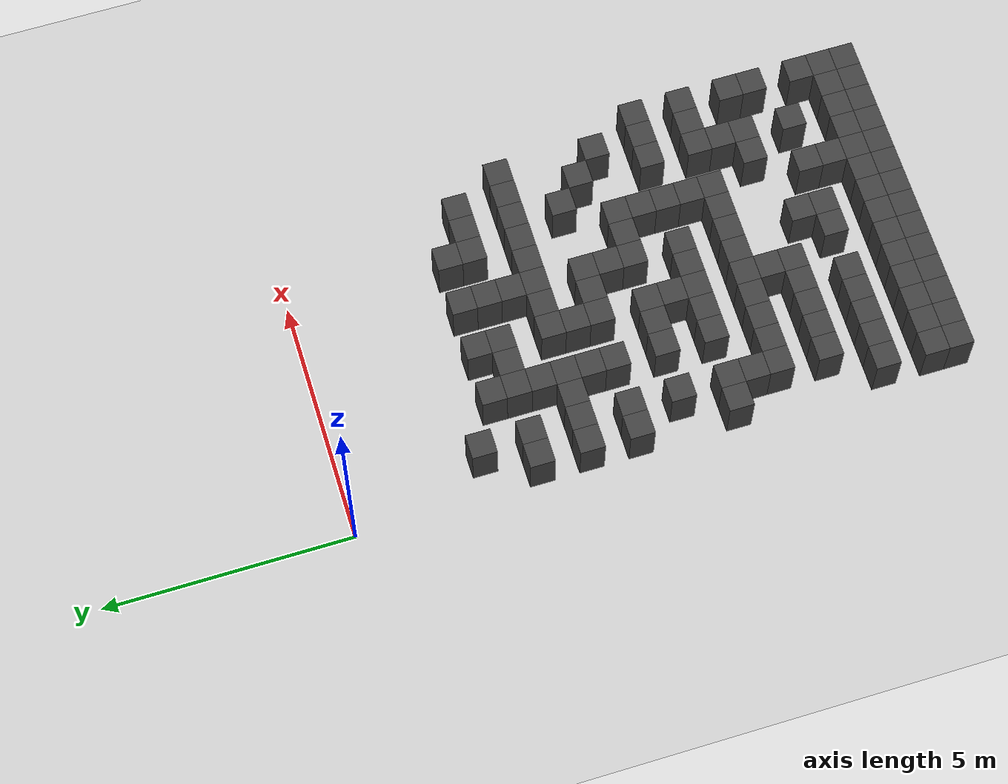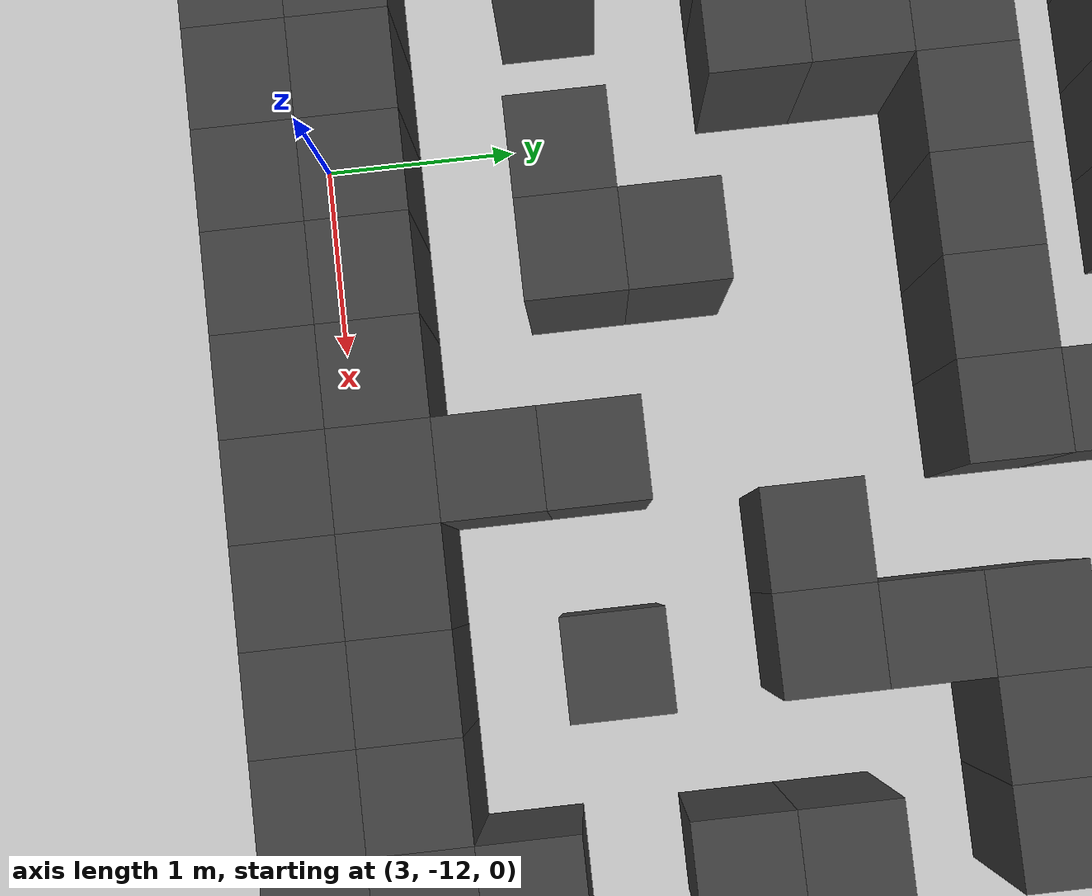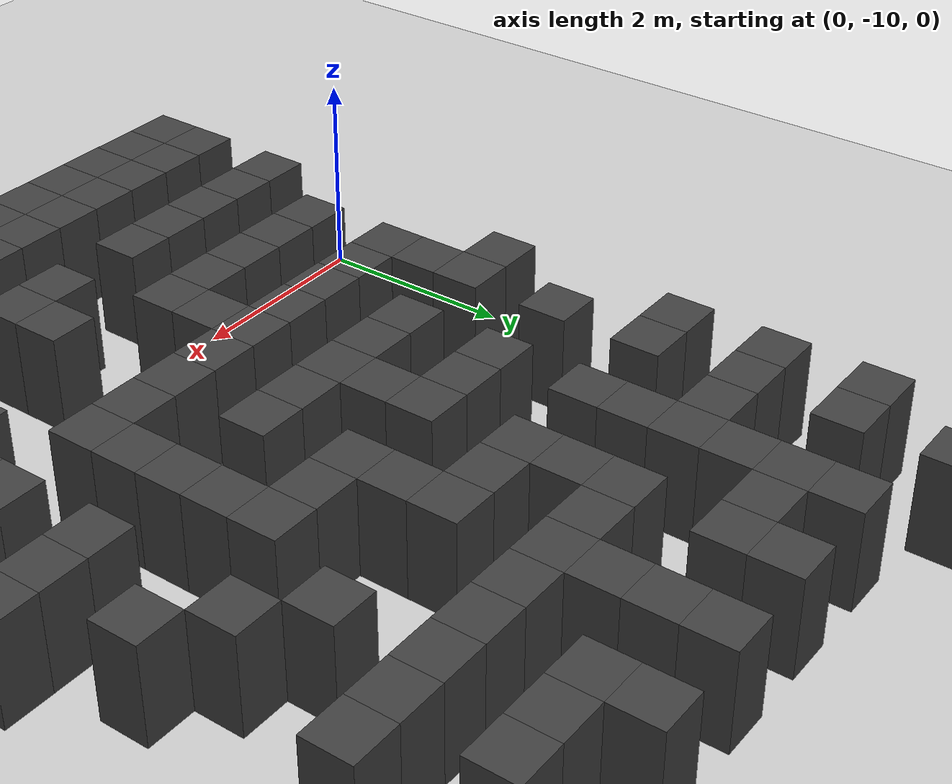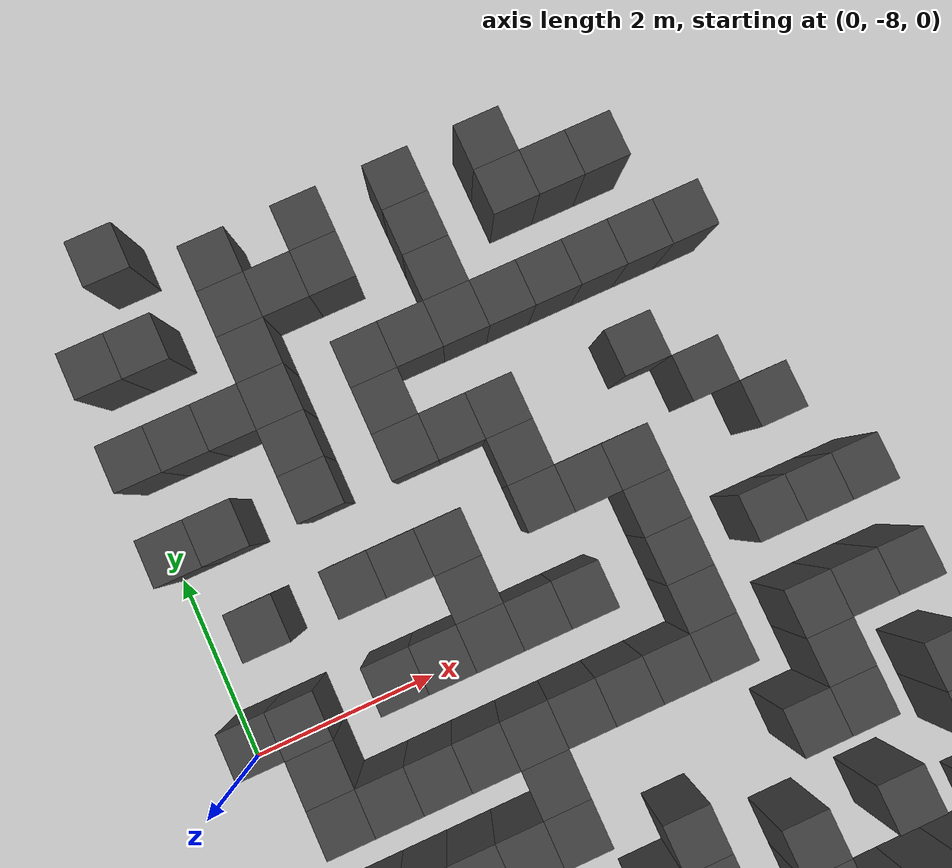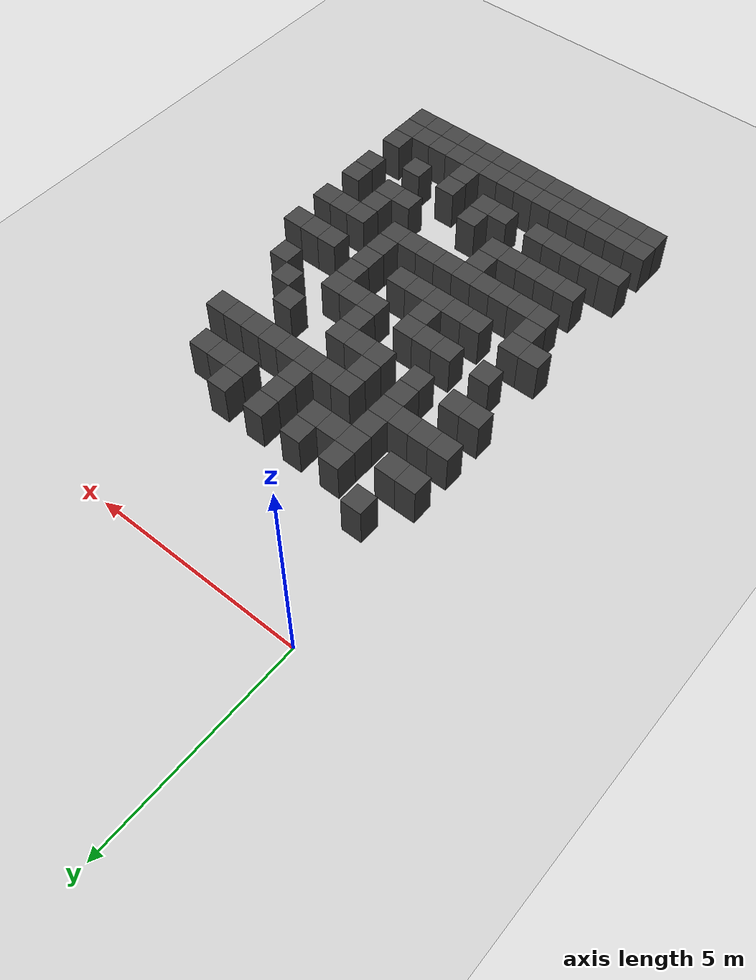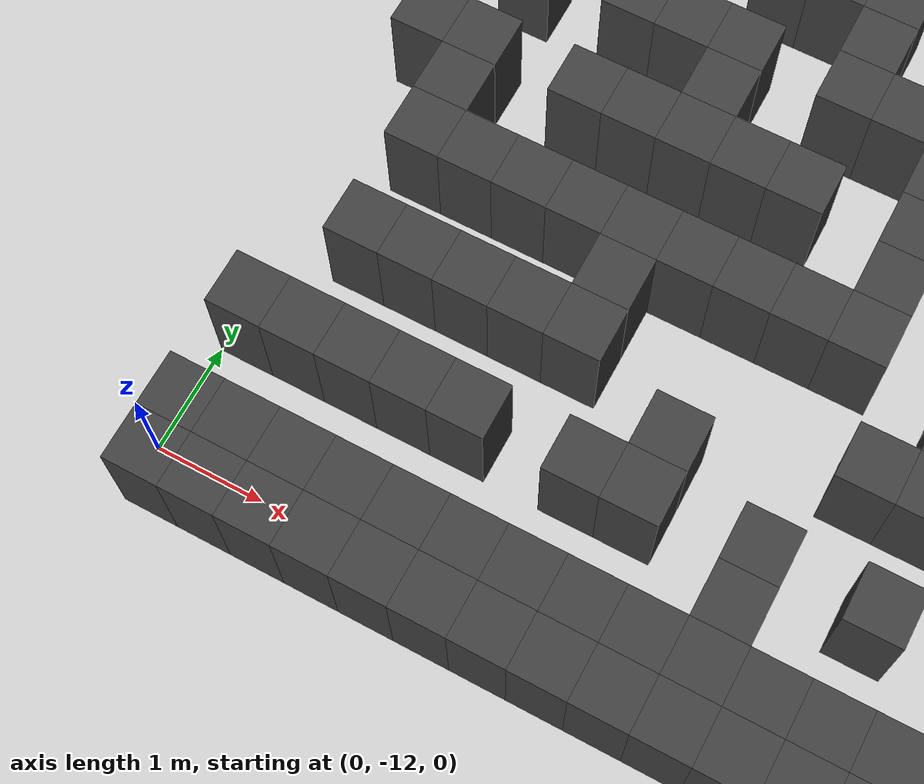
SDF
<sdf version="1.7">
 <world name="map_16734">
  <model name="ground_plane">
   <static>true</static>
   <link name="link">
    <collision name="collision">
     <geometry><plane><normal>0 0 1</normal><size>200 200</size></plane></geometry>
    </collision>
    <visual name="visual">
     <geometry><plane><normal>0 0 1</normal><size>200 200</size></plane></geometry>
     <material><ambient>0.8 0.8 0.8 1</ambient><diffuse>0.8 0.8 0.8 1</diffuse></material>
    </visual>
   </link>
  </model>
  <model name="maze_environment">
   <static>true</static>
   <link name="wall_747">
    <pose>0.750 -2.750 0.500 0 0 0</pose>
    <collision name="col"><geometry><box><size>0.5 0.5 1.0</size></box></geometry></collision>
    <visual name="vis">
     <geometry><box><size>0.5 0.5 1.0</size></box></geometry>
     <material><ambient>0.15 0.15 0.15 1</ambient><diffuse>0.25 0.25 0.25 1</diffuse></material>
    </visual>
   </link>
   <link name="wall_765">
    <pose>1.750 -3.250 0.500 0 0 0</pose>
    <collision name="col"><geometry><box><size>0.5 0.5 1.0</size></box></geometry></collision>
    <visual name="vis">
     <geometry><box><size>0.5 0.5 1.0</size></box></geometry>
     <material><ambient>0.15 0.15 0.15 1</ambient><diffuse>0.25 0.25 0.25 1</diffuse></material>
    </visual>
   </link>
   <link name="wall_766">
    <pose>2.750 -3.250 0.500 0 0 0</pose>
    <collision name="col"><geometry><box><size>0.5 0.5 1.0</size></box></geometry></collision>
    <visual name="vis">
     <geometry><box><size>0.5 0.5 1.0</size></box></geometry>
     <material><ambient>0.15 0.15 0.15 1</ambient><diffuse>0.25 0.25 0.25 1</diffuse></material>
    </visual>
   </link>
   <link name="wall_767">
    <pose>3.750 -3.250 0.500 0 0 0</pose>
    <collision name="col"><geometry><box><size>0.5 0.5 1.0</size></box></geometry></collision>
    <visual name="vis">
     <geometry><box><size>0.5 0.5 1.0</size></box></geometry>
     <material><ambient>0.15 0.15 0.15 1</ambient><diffuse>0.25 0.25 0.25 1</diffuse></material>
    </visual>
   </link>
   <link name="wall_768">
    <pose>4.750 -3.250 0.500 0 0 0</pose>
    <collision name="col"><geometry><box><size>0.5 0.5 1.0</size></box></geometry></collision>
    <visual name="vis">
     <geometry><box><size>0.5 0.5 1.0</size></box></geometry>
     <material><ambient>0.15 0.15 0.15 1</ambient><diffuse>0.25 0.25 0.25 1</diffuse></material>
    </visual>
   </link>
   <link name="wall_794">
    <pose>0.250 -3.750 0.500 0 0 0</pose>
    <collision name="col"><geometry><box><size>0.5 0.5 1.0</size></box></geometry></collision>
    <visual name="vis">
     <geometry><box><size>0.5 0.5 1.0</size></box></geometry>
     <material><ambient>0.15 0.15 0.15 1</ambient><diffuse>0.25 0.25 0.25 1</diffuse></material>
    </visual>
   </link>
   <link name="wall_795">
    <pose>0.750 -3.750 0.500 0 0 0</pose>
    <collision name="col"><geometry><box><size>0.5 0.5 1.0</size></box></geometry></collision>
    <visual name="vis">
     <geometry><box><size>0.5 0.5 1.0</size></box></geometry>
     <material><ambient>0.15 0.15 0.15 1</ambient><diffuse>0.25 0.25 0.25 1</diffuse></material>
    </visual>
   </link>
   <link name="wall_796">
    <pose>1.750 -3.750 0.500 0 0 0</pose>
    <collision name="col"><geometry><box><size>0.5 0.5 1.0</size></box></geometry></collision>
    <visual name="vis">
     <geometry><box><size>0.5 0.5 1.0</size></box></geometry>
     <material><ambient>0.15 0.15 0.15 1</ambient><diffuse>0.25 0.25 0.25 1</diffuse></material>
    </visual>
   </link>
   <link name="wall_797">
    <pose>2.250 -3.750 0.500 0 0 0</pose>
    <collision name="col"><geometry><box><size>0.5 0.5 1.0</size></box></geometry></collision>
    <visual name="vis">
     <geometry><box><size>0.5 0.5 1.0</size></box></geometry>
     <material><ambient>0.15 0.15 0.15 1</ambient><diffuse>0.25 0.25 0.25 1</diffuse></material>
    </visual>
   </link>
   <link name="wall_798">
    <pose>2.750 -3.750 0.500 0 0 0</pose>
    <collision name="col"><geometry><box><size>0.5 0.5 1.0</size></box></geometry></collision>
    <visual name="vis">
     <geometry><box><size>0.5 0.5 1.0</size></box></geometry>
     <material><ambient>0.15 0.15 0.15 1</ambient><diffuse>0.25 0.25 0.25 1</diffuse></material>
    </visual>
   </link>
   <link name="wall_799">
    <pose>3.750 -3.750 0.500 0 0 0</pose>
    <collision name="col"><geometry><box><size>0.5 0.5 1.0</size></box></geometry></collision>
    <visual name="vis">
     <geometry><box><size>0.5 0.5 1.0</size></box></geometry>
     <material><ambient>0.15 0.15 0.15 1</ambient><diffuse>0.25 0.25 0.25 1</diffuse></material>
    </visual>
   </link>
   <link name="wall_800">
    <pose>4.750 -3.750 0.500 0 0 0</pose>
    <collision name="col"><geometry><box><size>0.5 0.5 1.0</size></box></geometry></collision>
    <visual name="vis">
     <geometry><box><size>0.5 0.5 1.0</size></box></geometry>
     <material><ambient>0.15 0.15 0.15 1</ambient><diffuse>0.25 0.25 0.25 1</diffuse></material>
    </visual>
   </link>
   <link name="wall_801">
    <pose>5.250 -3.750 0.500 0 0 0</pose>
    <collision name="col"><geometry><box><size>0.5 0.5 1.0</size></box></geometry></collision>
    <visual name="vis">
     <geometry><box><size>0.5 0.5 1.0</size></box></geometry>
     <material><ambient>0.15 0.15 0.15 1</ambient><diffuse>0.25 0.25 0.25 1</diffuse></material>
    </visual>
   </link>
   <link name="wall_802">
    <pose>5.750 -3.750 0.500 0 0 0</pose>
    <collision name="col"><geometry><box><size>0.5 0.5 1.0</size></box></geometry></collision>
    <visual name="vis">
     <geometry><box><size>0.5 0.5 1.0</size></box></geometry>
     <material><ambient>0.15 0.15 0.15 1</ambient><diffuse>0.25 0.25 0.25 1</diffuse></material>
    </visual>
   </link>
   <link name="wall_817">
    <pose>1.750 -4.250 0.500 0 0 0</pose>
    <collision name="col"><geometry><box><size>0.5 0.5 1.0</size></box></geometry></collision>
    <visual name="vis">
     <geometry><box><size>0.5 0.5 1.0</size></box></geometry>
     <material><ambient>0.15 0.15 0.15 1</ambient><diffuse>0.25 0.25 0.25 1</diffuse></material>
    </visual>
   </link>
   <link name="wall_818">
    <pose>3.750 -4.250 0.500 0 0 0</pose>
    <collision name="col"><geometry><box><size>0.5 0.5 1.0</size></box></geometry></collision>
    <visual name="vis">
     <geometry><box><size>0.5 0.5 1.0</size></box></geometry>
     <material><ambient>0.15 0.15 0.15 1</ambient><diffuse>0.25 0.25 0.25 1</diffuse></material>
    </visual>
   </link>
   <link name="wall_840">
    <pose>0.250 -4.750 0.500 0 0 0</pose>
    <collision name="col"><geometry><box><size>0.5 0.5 1.0</size></box></geometry></collision>
    <visual name="vis">
     <geometry><box><size>0.5 0.5 1.0</size></box></geometry>
     <material><ambient>0.15 0.15 0.15 1</ambient><diffuse>0.25 0.25 0.25 1</diffuse></material>
    </visual>
   </link>
   <link name="wall_841">
    <pose>0.750 -4.750 0.500 0 0 0</pose>
    <collision name="col"><geometry><box><size>0.5 0.5 1.0</size></box></geometry></collision>
    <visual name="vis">
     <geometry><box><size>0.5 0.5 1.0</size></box></geometry>
     <material><ambient>0.15 0.15 0.15 1</ambient><diffuse>0.25 0.25 0.25 1</diffuse></material>
    </visual>
   </link>
   <link name="wall_842">
    <pose>1.250 -4.750 0.500 0 0 0</pose>
    <collision name="col"><geometry><box><size>0.5 0.5 1.0</size></box></geometry></collision>
    <visual name="vis">
     <geometry><box><size>0.5 0.5 1.0</size></box></geometry>
     <material><ambient>0.15 0.15 0.15 1</ambient><diffuse>0.25 0.25 0.25 1</diffuse></material>
    </visual>
   </link>
   <link name="wall_843">
    <pose>1.750 -4.750 0.500 0 0 0</pose>
    <collision name="col"><geometry><box><size>0.5 0.5 1.0</size></box></geometry></collision>
    <visual name="vis">
     <geometry><box><size>0.5 0.5 1.0</size></box></geometry>
     <material><ambient>0.15 0.15 0.15 1</ambient><diffuse>0.25 0.25 0.25 1</diffuse></material>
    </visual>
   </link>
   <link name="wall_844">
    <pose>2.750 -4.750 0.500 0 0 0</pose>
    <collision name="col"><geometry><box><size>0.5 0.5 1.0</size></box></geometry></collision>
    <visual name="vis">
     <geometry><box><size>0.5 0.5 1.0</size></box></geometry>
     <material><ambient>0.15 0.15 0.15 1</ambient><diffuse>0.25 0.25 0.25 1</diffuse></material>
    </visual>
   </link>
   <link name="wall_845">
    <pose>3.250 -4.750 0.500 0 0 0</pose>
    <collision name="col"><geometry><box><size>0.5 0.5 1.0</size></box></geometry></collision>
    <visual name="vis">
     <geometry><box><size>0.5 0.5 1.0</size></box></geometry>
     <material><ambient>0.15 0.15 0.15 1</ambient><diffuse>0.25 0.25 0.25 1</diffuse></material>
    </visual>
   </link>
   <link name="wall_846">
    <pose>3.750 -4.750 0.500 0 0 0</pose>
    <collision name="col"><geometry><box><size>0.5 0.5 1.0</size></box></geometry></collision>
    <visual name="vis">
     <geometry><box><size>0.5 0.5 1.0</size></box></geometry>
     <material><ambient>0.15 0.15 0.15 1</ambient><diffuse>0.25 0.25 0.25 1</diffuse></material>
    </visual>
   </link>
   <link name="wall_847">
    <pose>4.250 -4.750 0.500 0 0 0</pose>
    <collision name="col"><geometry><box><size>0.5 0.5 1.0</size></box></geometry></collision>
    <visual name="vis">
     <geometry><box><size>0.5 0.5 1.0</size></box></geometry>
     <material><ambient>0.15 0.15 0.15 1</ambient><diffuse>0.25 0.25 0.25 1</diffuse></material>
    </visual>
   </link>
   <link name="wall_848">
    <pose>4.750 -4.750 0.500 0 0 0</pose>
    <collision name="col"><geometry><box><size>0.5 0.5 1.0</size></box></geometry></collision>
    <visual name="vis">
     <geometry><box><size>0.5 0.5 1.0</size></box></geometry>
     <material><ambient>0.15 0.15 0.15 1</ambient><diffuse>0.25 0.25 0.25 1</diffuse></material>
    </visual>
   </link>
   <link name="wall_849">
    <pose>5.250 -4.750 0.500 0 0 0</pose>
    <collision name="col"><geometry><box><size>0.5 0.5 1.0</size></box></geometry></collision>
    <visual name="vis">
     <geometry><box><size>0.5 0.5 1.0</size></box></geometry>
     <material><ambient>0.15 0.15 0.15 1</ambient><diffuse>0.25 0.25 0.25 1</diffuse></material>
    </visual>
   </link>
   <link name="wall_850">
    <pose>5.750 -4.750 0.500 0 0 0</pose>
    <collision name="col"><geometry><box><size>0.5 0.5 1.0</size></box></geometry></collision>
    <visual name="vis">
     <geometry><box><size>0.5 0.5 1.0</size></box></geometry>
     <material><ambient>0.15 0.15 0.15 1</ambient><diffuse>0.25 0.25 0.25 1</diffuse></material>
    </visual>
   </link>
   <link name="wall_851">
    <pose>6.250 -4.750 0.500 0 0 0</pose>
    <collision name="col"><geometry><box><size>0.5 0.5 1.0</size></box></geometry></collision>
    <visual name="vis">
     <geometry><box><size>0.5 0.5 1.0</size></box></geometry>
     <material><ambient>0.15 0.15 0.15 1</ambient><diffuse>0.25 0.25 0.25 1</diffuse></material>
    </visual>
   </link>
   <link name="wall_868">
    <pose>1.750 -5.250 0.500 0 0 0</pose>
    <collision name="col"><geometry><box><size>0.5 0.5 1.0</size></box></geometry></collision>
    <visual name="vis">
     <geometry><box><size>0.5 0.5 1.0</size></box></geometry>
     <material><ambient>0.15 0.15 0.15 1</ambient><diffuse>0.25 0.25 0.25 1</diffuse></material>
    </visual>
   </link>
   <link name="wall_869">
    <pose>2.750 -5.250 0.500 0 0 0</pose>
    <collision name="col"><geometry><box><size>0.5 0.5 1.0</size></box></geometry></collision>
    <visual name="vis">
     <geometry><box><size>0.5 0.5 1.0</size></box></geometry>
     <material><ambient>0.15 0.15 0.15 1</ambient><diffuse>0.25 0.25 0.25 1</diffuse></material>
    </visual>
   </link>
   <link name="wall_893">
    <pose>0.250 -5.750 0.500 0 0 0</pose>
    <collision name="col"><geometry><box><size>0.5 0.5 1.0</size></box></geometry></collision>
    <visual name="vis">
     <geometry><box><size>0.5 0.5 1.0</size></box></geometry>
     <material><ambient>0.15 0.15 0.15 1</ambient><diffuse>0.25 0.25 0.25 1</diffuse></material>
    </visual>
   </link>
   <link name="wall_894">
    <pose>0.750 -5.750 0.500 0 0 0</pose>
    <collision name="col"><geometry><box><size>0.5 0.5 1.0</size></box></geometry></collision>
    <visual name="vis">
     <geometry><box><size>0.5 0.5 1.0</size></box></geometry>
     <material><ambient>0.15 0.15 0.15 1</ambient><diffuse>0.25 0.25 0.25 1</diffuse></material>
    </visual>
   </link>
   <link name="wall_895">
    <pose>1.750 -5.750 0.500 0 0 0</pose>
    <collision name="col"><geometry><box><size>0.5 0.5 1.0</size></box></geometry></collision>
    <visual name="vis">
     <geometry><box><size>0.5 0.5 1.0</size></box></geometry>
     <material><ambient>0.15 0.15 0.15 1</ambient><diffuse>0.25 0.25 0.25 1</diffuse></material>
    </visual>
   </link>
   <link name="wall_896">
    <pose>2.750 -5.750 0.500 0 0 0</pose>
    <collision name="col"><geometry><box><size>0.5 0.5 1.0</size></box></geometry></collision>
    <visual name="vis">
     <geometry><box><size>0.5 0.5 1.0</size></box></geometry>
     <material><ambient>0.15 0.15 0.15 1</ambient><diffuse>0.25 0.25 0.25 1</diffuse></material>
    </visual>
   </link>
   <link name="wall_897">
    <pose>3.250 -5.750 0.500 0 0 0</pose>
    <collision name="col"><geometry><box><size>0.5 0.5 1.0</size></box></geometry></collision>
    <visual name="vis">
     <geometry><box><size>0.5 0.5 1.0</size></box></geometry>
     <material><ambient>0.15 0.15 0.15 1</ambient><diffuse>0.25 0.25 0.25 1</diffuse></material>
    </visual>
   </link>
   <link name="wall_898">
    <pose>3.750 -5.750 0.500 0 0 0</pose>
    <collision name="col"><geometry><box><size>0.5 0.5 1.0</size></box></geometry></collision>
    <visual name="vis">
     <geometry><box><size>0.5 0.5 1.0</size></box></geometry>
     <material><ambient>0.15 0.15 0.15 1</ambient><diffuse>0.25 0.25 0.25 1</diffuse></material>
    </visual>
   </link>
   <link name="wall_899">
    <pose>5.250 -5.750 0.500 0 0 0</pose>
    <collision name="col"><geometry><box><size>0.5 0.5 1.0</size></box></geometry></collision>
    <visual name="vis">
     <geometry><box><size>0.5 0.5 1.0</size></box></geometry>
     <material><ambient>0.15 0.15 0.15 1</ambient><diffuse>0.25 0.25 0.25 1</diffuse></material>
    </visual>
   </link>
   <link name="wall_915">
    <pose>3.750 -6.250 0.500 0 0 0</pose>
    <collision name="col"><geometry><box><size>0.5 0.5 1.0</size></box></geometry></collision>
    <visual name="vis">
     <geometry><box><size>0.5 0.5 1.0</size></box></geometry>
     <material><ambient>0.15 0.15 0.15 1</ambient><diffuse>0.25 0.25 0.25 1</diffuse></material>
    </visual>
   </link>
   <link name="wall_916">
    <pose>5.750 -6.250 0.500 0 0 0</pose>
    <collision name="col"><geometry><box><size>0.5 0.5 1.0</size></box></geometry></collision>
    <visual name="vis">
     <geometry><box><size>0.5 0.5 1.0</size></box></geometry>
     <material><ambient>0.15 0.15 0.15 1</ambient><diffuse>0.25 0.25 0.25 1</diffuse></material>
    </visual>
   </link>
   <link name="wall_939">
    <pose>0.750 -6.750 0.500 0 0 0</pose>
    <collision name="col"><geometry><box><size>0.5 0.5 1.0</size></box></geometry></collision>
    <visual name="vis">
     <geometry><box><size>0.5 0.5 1.0</size></box></geometry>
     <material><ambient>0.15 0.15 0.15 1</ambient><diffuse>0.25 0.25 0.25 1</diffuse></material>
    </visual>
   </link>
   <link name="wall_940">
    <pose>1.750 -6.750 0.500 0 0 0</pose>
    <collision name="col"><geometry><box><size>0.5 0.5 1.0</size></box></geometry></collision>
    <visual name="vis">
     <geometry><box><size>0.5 0.5 1.0</size></box></geometry>
     <material><ambient>0.15 0.15 0.15 1</ambient><diffuse>0.25 0.25 0.25 1</diffuse></material>
    </visual>
   </link>
   <link name="wall_941">
    <pose>2.250 -6.750 0.500 0 0 0</pose>
    <collision name="col"><geometry><box><size>0.5 0.5 1.0</size></box></geometry></collision>
    <visual name="vis">
     <geometry><box><size>0.5 0.5 1.0</size></box></geometry>
     <material><ambient>0.15 0.15 0.15 1</ambient><diffuse>0.25 0.25 0.25 1</diffuse></material>
    </visual>
   </link>
   <link name="wall_942">
    <pose>2.750 -6.750 0.500 0 0 0</pose>
    <collision name="col"><geometry><box><size>0.5 0.5 1.0</size></box></geometry></collision>
    <visual name="vis">
     <geometry><box><size>0.5 0.5 1.0</size></box></geometry>
     <material><ambient>0.15 0.15 0.15 1</ambient><diffuse>0.25 0.25 0.25 1</diffuse></material>
    </visual>
   </link>
   <link name="wall_943">
    <pose>3.750 -6.750 0.500 0 0 0</pose>
    <collision name="col"><geometry><box><size>0.5 0.5 1.0</size></box></geometry></collision>
    <visual name="vis">
     <geometry><box><size>0.5 0.5 1.0</size></box></geometry>
     <material><ambient>0.15 0.15 0.15 1</ambient><diffuse>0.25 0.25 0.25 1</diffuse></material>
    </visual>
   </link>
   <link name="wall_944">
    <pose>4.250 -6.750 0.500 0 0 0</pose>
    <collision name="col"><geometry><box><size>0.5 0.5 1.0</size></box></geometry></collision>
    <visual name="vis">
     <geometry><box><size>0.5 0.5 1.0</size></box></geometry>
     <material><ambient>0.15 0.15 0.15 1</ambient><diffuse>0.25 0.25 0.25 1</diffuse></material>
    </visual>
   </link>
   <link name="wall_945">
    <pose>4.750 -6.750 0.500 0 0 0</pose>
    <collision name="col"><geometry><box><size>0.5 0.5 1.0</size></box></geometry></collision>
    <visual name="vis">
     <geometry><box><size>0.5 0.5 1.0</size></box></geometry>
     <material><ambient>0.15 0.15 0.15 1</ambient><diffuse>0.25 0.25 0.25 1</diffuse></material>
    </visual>
   </link>
   <link name="wall_946">
    <pose>6.250 -6.750 0.500 0 0 0</pose>
    <collision name="col"><geometry><box><size>0.5 0.5 1.0</size></box></geometry></collision>
    <visual name="vis">
     <geometry><box><size>0.5 0.5 1.0</size></box></geometry>
     <material><ambient>0.15 0.15 0.15 1</ambient><diffuse>0.25 0.25 0.25 1</diffuse></material>
    </visual>
   </link>
   <link name="wall_963">
    <pose>2.750 -7.250 0.500 0 0 0</pose>
    <collision name="col"><geometry><box><size>0.5 0.5 1.0</size></box></geometry></collision>
    <visual name="vis">
     <geometry><box><size>0.5 0.5 1.0</size></box></geometry>
     <material><ambient>0.15 0.15 0.15 1</ambient><diffuse>0.25 0.25 0.25 1</diffuse></material>
    </visual>
   </link>
   <link name="wall_964">
    <pose>4.750 -7.250 0.500 0 0 0</pose>
    <collision name="col"><geometry><box><size>0.5 0.5 1.0</size></box></geometry></collision>
    <visual name="vis">
     <geometry><box><size>0.5 0.5 1.0</size></box></geometry>
     <material><ambient>0.15 0.15 0.15 1</ambient><diffuse>0.25 0.25 0.25 1</diffuse></material>
    </visual>
   </link>
   <link name="wall_984">
    <pose>0.250 -7.750 0.500 0 0 0</pose>
    <collision name="col"><geometry><box><size>0.5 0.5 1.0</size></box></geometry></collision>
    <visual name="vis">
     <geometry><box><size>0.5 0.5 1.0</size></box></geometry>
     <material><ambient>0.15 0.15 0.15 1</ambient><diffuse>0.25 0.25 0.25 1</diffuse></material>
    </visual>
   </link>
   <link name="wall_985">
    <pose>0.750 -7.750 0.500 0 0 0</pose>
    <collision name="col"><geometry><box><size>0.5 0.5 1.0</size></box></geometry></collision>
    <visual name="vis">
     <geometry><box><size>0.5 0.5 1.0</size></box></geometry>
     <material><ambient>0.15 0.15 0.15 1</ambient><diffuse>0.25 0.25 0.25 1</diffuse></material>
    </visual>
   </link>
   <link name="wall_986">
    <pose>1.750 -7.750 0.500 0 0 0</pose>
    <collision name="col"><geometry><box><size>0.5 0.5 1.0</size></box></geometry></collision>
    <visual name="vis">
     <geometry><box><size>0.5 0.5 1.0</size></box></geometry>
     <material><ambient>0.15 0.15 0.15 1</ambient><diffuse>0.25 0.25 0.25 1</diffuse></material>
    </visual>
   </link>
   <link name="wall_987">
    <pose>2.250 -7.750 0.500 0 0 0</pose>
    <collision name="col"><geometry><box><size>0.5 0.5 1.0</size></box></geometry></collision>
    <visual name="vis">
     <geometry><box><size>0.5 0.5 1.0</size></box></geometry>
     <material><ambient>0.15 0.15 0.15 1</ambient><diffuse>0.25 0.25 0.25 1</diffuse></material>
    </visual>
   </link>
   <link name="wall_988">
    <pose>2.750 -7.750 0.500 0 0 0</pose>
    <collision name="col"><geometry><box><size>0.5 0.5 1.0</size></box></geometry></collision>
    <visual name="vis">
     <geometry><box><size>0.5 0.5 1.0</size></box></geometry>
     <material><ambient>0.15 0.15 0.15 1</ambient><diffuse>0.25 0.25 0.25 1</diffuse></material>
    </visual>
   </link>
   <link name="wall_989">
    <pose>3.250 -7.750 0.500 0 0 0</pose>
    <collision name="col"><geometry><box><size>0.5 0.5 1.0</size></box></geometry></collision>
    <visual name="vis">
     <geometry><box><size>0.5 0.5 1.0</size></box></geometry>
     <material><ambient>0.15 0.15 0.15 1</ambient><diffuse>0.25 0.25 0.25 1</diffuse></material>
    </visual>
   </link>
   <link name="wall_990">
    <pose>3.750 -7.750 0.500 0 0 0</pose>
    <collision name="col"><geometry><box><size>0.5 0.5 1.0</size></box></geometry></collision>
    <visual name="vis">
     <geometry><box><size>0.5 0.5 1.0</size></box></geometry>
     <material><ambient>0.15 0.15 0.15 1</ambient><diffuse>0.25 0.25 0.25 1</diffuse></material>
    </visual>
   </link>
   <link name="wall_991">
    <pose>4.750 -7.750 0.500 0 0 0</pose>
    <collision name="col"><geometry><box><size>0.5 0.5 1.0</size></box></geometry></collision>
    <visual name="vis">
     <geometry><box><size>0.5 0.5 1.0</size></box></geometry>
     <material><ambient>0.15 0.15 0.15 1</ambient><diffuse>0.25 0.25 0.25 1</diffuse></material>
    </visual>
   </link>
   <link name="wall_992">
    <pose>5.750 -7.750 0.500 0 0 0</pose>
    <collision name="col"><geometry><box><size>0.5 0.5 1.0</size></box></geometry></collision>
    <visual name="vis">
     <geometry><box><size>0.5 0.5 1.0</size></box></geometry>
     <material><ambient>0.15 0.15 0.15 1</ambient><diffuse>0.25 0.25 0.25 1</diffuse></material>
    </visual>
   </link>
   <link name="wall_993">
    <pose>6.250 -7.750 0.500 0 0 0</pose>
    <collision name="col"><geometry><box><size>0.5 0.5 1.0</size></box></geometry></collision>
    <visual name="vis">
     <geometry><box><size>0.5 0.5 1.0</size></box></geometry>
     <material><ambient>0.15 0.15 0.15 1</ambient><diffuse>0.25 0.25 0.25 1</diffuse></material>
    </visual>
   </link>
   <link name="wall_994">
    <pose>6.750 -7.750 0.500 0 0 0</pose>
    <collision name="col"><geometry><box><size>0.5 0.5 1.0</size></box></geometry></collision>
    <visual name="vis">
     <geometry><box><size>0.5 0.5 1.0</size></box></geometry>
     <material><ambient>0.15 0.15 0.15 1</ambient><diffuse>0.25 0.25 0.25 1</diffuse></material>
    </visual>
   </link>
   <link name="wall_1009">
    <pose>0.750 -8.250 0.500 0 0 0</pose>
    <collision name="col"><geometry><box><size>0.5 0.5 1.0</size></box></geometry></collision>
    <visual name="vis">
     <geometry><box><size>0.5 0.5 1.0</size></box></geometry>
     <material><ambient>0.15 0.15 0.15 1</ambient><diffuse>0.25 0.25 0.25 1</diffuse></material>
    </visual>
   </link>
   <link name="wall_1010">
    <pose>4.750 -8.250 0.500 0 0 0</pose>
    <collision name="col"><geometry><box><size>0.5 0.5 1.0</size></box></geometry></collision>
    <visual name="vis">
     <geometry><box><size>0.5 0.5 1.0</size></box></geometry>
     <material><ambient>0.15 0.15 0.15 1</ambient><diffuse>0.25 0.25 0.25 1</diffuse></material>
    </visual>
   </link>
   <link name="wall_1031">
    <pose>0.750 -8.750 0.500 0 0 0</pose>
    <collision name="col"><geometry><box><size>0.5 0.5 1.0</size></box></geometry></collision>
    <visual name="vis">
     <geometry><box><size>0.5 0.5 1.0</size></box></geometry>
     <material><ambient>0.15 0.15 0.15 1</ambient><diffuse>0.25 0.25 0.25 1</diffuse></material>
    </visual>
   </link>
   <link name="wall_1032">
    <pose>1.250 -8.750 0.500 0 0 0</pose>
    <collision name="col"><geometry><box><size>0.5 0.5 1.0</size></box></geometry></collision>
    <visual name="vis">
     <geometry><box><size>0.5 0.5 1.0</size></box></geometry>
     <material><ambient>0.15 0.15 0.15 1</ambient><diffuse>0.25 0.25 0.25 1</diffuse></material>
    </visual>
   </link>
   <link name="wall_1033">
    <pose>1.750 -8.750 0.500 0 0 0</pose>
    <collision name="col"><geometry><box><size>0.5 0.5 1.0</size></box></geometry></collision>
    <visual name="vis">
     <geometry><box><size>0.5 0.5 1.0</size></box></geometry>
     <material><ambient>0.15 0.15 0.15 1</ambient><diffuse>0.25 0.25 0.25 1</diffuse></material>
    </visual>
   </link>
   <link name="wall_1034">
    <pose>2.250 -8.750 0.500 0 0 0</pose>
    <collision name="col"><geometry><box><size>0.5 0.5 1.0</size></box></geometry></collision>
    <visual name="vis">
     <geometry><box><size>0.5 0.5 1.0</size></box></geometry>
     <material><ambient>0.15 0.15 0.15 1</ambient><diffuse>0.25 0.25 0.25 1</diffuse></material>
    </visual>
   </link>
   <link name="wall_1035">
    <pose>2.750 -8.750 0.500 0 0 0</pose>
    <collision name="col"><geometry><box><size>0.5 0.5 1.0</size></box></geometry></collision>
    <visual name="vis">
     <geometry><box><size>0.5 0.5 1.0</size></box></geometry>
     <material><ambient>0.15 0.15 0.15 1</ambient><diffuse>0.25 0.25 0.25 1</diffuse></material>
    </visual>
   </link>
   <link name="wall_1036">
    <pose>3.250 -8.750 0.500 0 0 0</pose>
    <collision name="col"><geometry><box><size>0.5 0.5 1.0</size></box></geometry></collision>
    <visual name="vis">
     <geometry><box><size>0.5 0.5 1.0</size></box></geometry>
     <material><ambient>0.15 0.15 0.15 1</ambient><diffuse>0.25 0.25 0.25 1</diffuse></material>
    </visual>
   </link>
   <link name="wall_1037">
    <pose>3.750 -8.750 0.500 0 0 0</pose>
    <collision name="col"><geometry><box><size>0.5 0.5 1.0</size></box></geometry></collision>
    <visual name="vis">
     <geometry><box><size>0.5 0.5 1.0</size></box></geometry>
     <material><ambient>0.15 0.15 0.15 1</ambient><diffuse>0.25 0.25 0.25 1</diffuse></material>
    </visual>
   </link>
   <link name="wall_1038">
    <pose>4.250 -8.750 0.500 0 0 0</pose>
    <collision name="col"><geometry><box><size>0.5 0.5 1.0</size></box></geometry></collision>
    <visual name="vis">
     <geometry><box><size>0.5 0.5 1.0</size></box></geometry>
     <material><ambient>0.15 0.15 0.15 1</ambient><diffuse>0.25 0.25 0.25 1</diffuse></material>
    </visual>
   </link>
   <link name="wall_1039">
    <pose>4.750 -8.750 0.500 0 0 0</pose>
    <collision name="col"><geometry><box><size>0.5 0.5 1.0</size></box></geometry></collision>
    <visual name="vis">
     <geometry><box><size>0.5 0.5 1.0</size></box></geometry>
     <material><ambient>0.15 0.15 0.15 1</ambient><diffuse>0.25 0.25 0.25 1</diffuse></material>
    </visual>
   </link>
   <link name="wall_1040">
    <pose>5.750 -8.750 0.500 0 0 0</pose>
    <collision name="col"><geometry><box><size>0.5 0.5 1.0</size></box></geometry></collision>
    <visual name="vis">
     <geometry><box><size>0.5 0.5 1.0</size></box></geometry>
     <material><ambient>0.15 0.15 0.15 1</ambient><diffuse>0.25 0.25 0.25 1</diffuse></material>
    </visual>
   </link>
   <link name="wall_1041">
    <pose>6.250 -8.750 0.500 0 0 0</pose>
    <collision name="col"><geometry><box><size>0.5 0.5 1.0</size></box></geometry></collision>
    <visual name="vis">
     <geometry><box><size>0.5 0.5 1.0</size></box></geometry>
     <material><ambient>0.15 0.15 0.15 1</ambient><diffuse>0.25 0.25 0.25 1</diffuse></material>
    </visual>
   </link>
   <link name="wall_1042">
    <pose>6.750 -8.750 0.500 0 0 0</pose>
    <collision name="col"><geometry><box><size>0.5 0.5 1.0</size></box></geometry></collision>
    <visual name="vis">
     <geometry><box><size>0.5 0.5 1.0</size></box></geometry>
     <material><ambient>0.15 0.15 0.15 1</ambient><diffuse>0.25 0.25 0.25 1</diffuse></material>
    </visual>
   </link>
   <link name="wall_1053">
    <pose>2.750 -9.250 0.500 0 0 0</pose>
    <collision name="col"><geometry><box><size>0.5 0.5 1.0</size></box></geometry></collision>
    <visual name="vis">
     <geometry><box><size>0.5 0.5 1.0</size></box></geometry>
     <material><ambient>0.15 0.15 0.15 1</ambient><diffuse>0.25 0.25 0.25 1</diffuse></material>
    </visual>
   </link>
   <link name="wall_1054">
    <pose>5.750 -9.250 0.500 0 0 0</pose>
    <collision name="col"><geometry><box><size>0.5 0.5 1.0</size></box></geometry></collision>
    <visual name="vis">
     <geometry><box><size>0.5 0.5 1.0</size></box></geometry>
     <material><ambient>0.15 0.15 0.15 1</ambient><diffuse>0.25 0.25 0.25 1</diffuse></material>
    </visual>
   </link>
   <link name="wall_1083">
    <pose>0.750 -9.750 0.500 0 0 0</pose>
    <collision name="col"><geometry><box><size>0.5 0.5 1.0</size></box></geometry></collision>
    <visual name="vis">
     <geometry><box><size>0.5 0.5 1.0</size></box></geometry>
     <material><ambient>0.15 0.15 0.15 1</ambient><diffuse>0.25 0.25 0.25 1</diffuse></material>
    </visual>
   </link>
   <link name="wall_1084">
    <pose>1.250 -9.750 0.500 0 0 0</pose>
    <collision name="col"><geometry><box><size>0.5 0.5 1.0</size></box></geometry></collision>
    <visual name="vis">
     <geometry><box><size>0.5 0.5 1.0</size></box></geometry>
     <material><ambient>0.15 0.15 0.15 1</ambient><diffuse>0.25 0.25 0.25 1</diffuse></material>
    </visual>
   </link>
   <link name="wall_1085">
    <pose>1.750 -9.750 0.500 0 0 0</pose>
    <collision name="col"><geometry><box><size>0.5 0.5 1.0</size></box></geometry></collision>
    <visual name="vis">
     <geometry><box><size>0.5 0.5 1.0</size></box></geometry>
     <material><ambient>0.15 0.15 0.15 1</ambient><diffuse>0.25 0.25 0.25 1</diffuse></material>
    </visual>
   </link>
   <link name="wall_1086">
    <pose>2.250 -9.750 0.500 0 0 0</pose>
    <collision name="col"><geometry><box><size>0.5 0.5 1.0</size></box></geometry></collision>
    <visual name="vis">
     <geometry><box><size>0.5 0.5 1.0</size></box></geometry>
     <material><ambient>0.15 0.15 0.15 1</ambient><diffuse>0.25 0.25 0.25 1</diffuse></material>
    </visual>
   </link>
   <link name="wall_1087">
    <pose>2.750 -9.750 0.500 0 0 0</pose>
    <collision name="col"><geometry><box><size>0.5 0.5 1.0</size></box></geometry></collision>
    <visual name="vis">
     <geometry><box><size>0.5 0.5 1.0</size></box></geometry>
     <material><ambient>0.15 0.15 0.15 1</ambient><diffuse>0.25 0.25 0.25 1</diffuse></material>
    </visual>
   </link>
   <link name="wall_1088">
    <pose>5.250 -9.750 0.500 0 0 0</pose>
    <collision name="col"><geometry><box><size>0.5 0.5 1.0</size></box></geometry></collision>
    <visual name="vis">
     <geometry><box><size>0.5 0.5 1.0</size></box></geometry>
     <material><ambient>0.15 0.15 0.15 1</ambient><diffuse>0.25 0.25 0.25 1</diffuse></material>
    </visual>
   </link>
   <link name="wall_1089">
    <pose>5.750 -9.750 0.500 0 0 0</pose>
    <collision name="col"><geometry><box><size>0.5 0.5 1.0</size></box></geometry></collision>
    <visual name="vis">
     <geometry><box><size>0.5 0.5 1.0</size></box></geometry>
     <material><ambient>0.15 0.15 0.15 1</ambient><diffuse>0.25 0.25 0.25 1</diffuse></material>
    </visual>
   </link>
   <link name="wall_1090">
    <pose>6.750 -9.750 0.500 0 0 0</pose>
    <collision name="col"><geometry><box><size>0.5 0.5 1.0</size></box></geometry></collision>
    <visual name="vis">
     <geometry><box><size>0.5 0.5 1.0</size></box></geometry>
     <material><ambient>0.15 0.15 0.15 1</ambient><diffuse>0.25 0.25 0.25 1</diffuse></material>
    </visual>
   </link>
   <link name="wall_1103">
    <pose>3.750 -10.250 0.500 0 0 0</pose>
    <collision name="col"><geometry><box><size>0.5 0.5 1.0</size></box></geometry></collision>
    <visual name="vis">
     <geometry><box><size>0.5 0.5 1.0</size></box></geometry>
     <material><ambient>0.15 0.15 0.15 1</ambient><diffuse>0.25 0.25 0.25 1</diffuse></material>
    </visual>
   </link>
   <link name="wall_1104">
    <pose>6.750 -10.250 0.500 0 0 0</pose>
    <collision name="col"><geometry><box><size>0.5 0.5 1.0</size></box></geometry></collision>
    <visual name="vis">
     <geometry><box><size>0.5 0.5 1.0</size></box></geometry>
     <material><ambient>0.15 0.15 0.15 1</ambient><diffuse>0.25 0.25 0.25 1</diffuse></material>
    </visual>
   </link>
   <link name="wall_1124">
    <pose>0.250 -10.750 0.500 0 0 0</pose>
    <collision name="col"><geometry><box><size>0.5 0.5 1.0</size></box></geometry></collision>
    <visual name="vis">
     <geometry><box><size>0.5 0.5 1.0</size></box></geometry>
     <material><ambient>0.15 0.15 0.15 1</ambient><diffuse>0.25 0.25 0.25 1</diffuse></material>
    </visual>
   </link>
   <link name="wall_1125">
    <pose>0.750 -10.750 0.500 0 0 0</pose>
    <collision name="col"><geometry><box><size>0.5 0.5 1.0</size></box></geometry></collision>
    <visual name="vis">
     <geometry><box><size>0.5 0.5 1.0</size></box></geometry>
     <material><ambient>0.15 0.15 0.15 1</ambient><diffuse>0.25 0.25 0.25 1</diffuse></material>
    </visual>
   </link>
   <link name="wall_1126">
    <pose>1.250 -10.750 0.500 0 0 0</pose>
    <collision name="col"><geometry><box><size>0.5 0.5 1.0</size></box></geometry></collision>
    <visual name="vis">
     <geometry><box><size>0.5 0.5 1.0</size></box></geometry>
     <material><ambient>0.15 0.15 0.15 1</ambient><diffuse>0.25 0.25 0.25 1</diffuse></material>
    </visual>
   </link>
   <link name="wall_1127">
    <pose>1.750 -10.750 0.500 0 0 0</pose>
    <collision name="col"><geometry><box><size>0.5 0.5 1.0</size></box></geometry></collision>
    <visual name="vis">
     <geometry><box><size>0.5 0.5 1.0</size></box></geometry>
     <material><ambient>0.15 0.15 0.15 1</ambient><diffuse>0.25 0.25 0.25 1</diffuse></material>
    </visual>
   </link>
   <link name="wall_1128">
    <pose>2.250 -10.750 0.500 0 0 0</pose>
    <collision name="col"><geometry><box><size>0.5 0.5 1.0</size></box></geometry></collision>
    <visual name="vis">
     <geometry><box><size>0.5 0.5 1.0</size></box></geometry>
     <material><ambient>0.15 0.15 0.15 1</ambient><diffuse>0.25 0.25 0.25 1</diffuse></material>
    </visual>
   </link>
   <link name="wall_1129">
    <pose>3.250 -10.750 0.500 0 0 0</pose>
    <collision name="col"><geometry><box><size>0.5 0.5 1.0</size></box></geometry></collision>
    <visual name="vis">
     <geometry><box><size>0.5 0.5 1.0</size></box></geometry>
     <material><ambient>0.15 0.15 0.15 1</ambient><diffuse>0.25 0.25 0.25 1</diffuse></material>
    </visual>
   </link>
   <link name="wall_1130">
    <pose>3.750 -10.750 0.500 0 0 0</pose>
    <collision name="col"><geometry><box><size>0.5 0.5 1.0</size></box></geometry></collision>
    <visual name="vis">
     <geometry><box><size>0.5 0.5 1.0</size></box></geometry>
     <material><ambient>0.15 0.15 0.15 1</ambient><diffuse>0.25 0.25 0.25 1</diffuse></material>
    </visual>
   </link>
   <link name="wall_1131">
    <pose>4.750 -10.750 0.500 0 0 0</pose>
    <collision name="col"><geometry><box><size>0.5 0.5 1.0</size></box></geometry></collision>
    <visual name="vis">
     <geometry><box><size>0.5 0.5 1.0</size></box></geometry>
     <material><ambient>0.15 0.15 0.15 1</ambient><diffuse>0.25 0.25 0.25 1</diffuse></material>
    </visual>
   </link>
   <link name="wall_1132">
    <pose>5.750 -10.750 0.500 0 0 0</pose>
    <collision name="col"><geometry><box><size>0.5 0.5 1.0</size></box></geometry></collision>
    <visual name="vis">
     <geometry><box><size>0.5 0.5 1.0</size></box></geometry>
     <material><ambient>0.15 0.15 0.15 1</ambient><diffuse>0.25 0.25 0.25 1</diffuse></material>
    </visual>
   </link>
   <link name="wall_1144">
    <pose>4.750 -11.250 0.500 0 0 0</pose>
    <collision name="col"><geometry><box><size>0.5 0.5 1.0</size></box></geometry></collision>
    <visual name="vis">
     <geometry><box><size>0.5 0.5 1.0</size></box></geometry>
     <material><ambient>0.15 0.15 0.15 1</ambient><diffuse>0.25 0.25 0.25 1</diffuse></material>
    </visual>
   </link>
   <link name="wall_1145">
    <pose>6.750 -11.250 0.500 0 0 0</pose>
    <collision name="col"><geometry><box><size>0.5 0.5 1.0</size></box></geometry></collision>
    <visual name="vis">
     <geometry><box><size>0.5 0.5 1.0</size></box></geometry>
     <material><ambient>0.15 0.15 0.15 1</ambient><diffuse>0.25 0.25 0.25 1</diffuse></material>
    </visual>
   </link>
   <link name="wall_1173">
    <pose>0.250 -11.750 0.500 0 0 0</pose>
    <collision name="col"><geometry><box><size>0.5 0.5 1.0</size></box></geometry></collision>
    <visual name="vis">
     <geometry><box><size>0.5 0.5 1.0</size></box></geometry>
     <material><ambient>0.15 0.15 0.15 1</ambient><diffuse>0.25 0.25 0.25 1</diffuse></material>
    </visual>
   </link>
   <link name="wall_1174">
    <pose>0.750 -11.750 0.500 0 0 0</pose>
    <collision name="col"><geometry><box><size>0.5 0.5 1.0</size></box></geometry></collision>
    <visual name="vis">
     <geometry><box><size>0.5 0.5 1.0</size></box></geometry>
     <material><ambient>0.15 0.15 0.15 1</ambient><diffuse>0.25 0.25 0.25 1</diffuse></material>
    </visual>
   </link>
   <link name="wall_1175">
    <pose>1.250 -11.750 0.500 0 0 0</pose>
    <collision name="col"><geometry><box><size>0.5 0.5 1.0</size></box></geometry></collision>
    <visual name="vis">
     <geometry><box><size>0.5 0.5 1.0</size></box></geometry>
     <material><ambient>0.15 0.15 0.15 1</ambient><diffuse>0.25 0.25 0.25 1</diffuse></material>
    </visual>
   </link>
   <link name="wall_1176">
    <pose>1.750 -11.750 0.500 0 0 0</pose>
    <collision name="col"><geometry><box><size>0.5 0.5 1.0</size></box></geometry></collision>
    <visual name="vis">
     <geometry><box><size>0.5 0.5 1.0</size></box></geometry>
     <material><ambient>0.15 0.15 0.15 1</ambient><diffuse>0.25 0.25 0.25 1</diffuse></material>
    </visual>
   </link>
   <link name="wall_1177">
    <pose>2.250 -11.750 0.500 0 0 0</pose>
    <collision name="col"><geometry><box><size>0.5 0.5 1.0</size></box></geometry></collision>
    <visual name="vis">
     <geometry><box><size>0.5 0.5 1.0</size></box></geometry>
     <material><ambient>0.15 0.15 0.15 1</ambient><diffuse>0.25 0.25 0.25 1</diffuse></material>
    </visual>
   </link>
   <link name="wall_1178">
    <pose>2.750 -11.750 0.500 0 0 0</pose>
    <collision name="col"><geometry><box><size>0.5 0.5 1.0</size></box></geometry></collision>
    <visual name="vis">
     <geometry><box><size>0.5 0.5 1.0</size></box></geometry>
     <material><ambient>0.15 0.15 0.15 1</ambient><diffuse>0.25 0.25 0.25 1</diffuse></material>
    </visual>
   </link>
   <link name="wall_1179">
    <pose>3.250 -11.750 0.500 0 0 0</pose>
    <collision name="col"><geometry><box><size>0.5 0.5 1.0</size></box></geometry></collision>
    <visual name="vis">
     <geometry><box><size>0.5 0.5 1.0</size></box></geometry>
     <material><ambient>0.15 0.15 0.15 1</ambient><diffuse>0.25 0.25 0.25 1</diffuse></material>
    </visual>
   </link>
   <link name="wall_1180">
    <pose>3.750 -11.750 0.500 0 0 0</pose>
    <collision name="col"><geometry><box><size>0.5 0.5 1.0</size></box></geometry></collision>
    <visual name="vis">
     <geometry><box><size>0.5 0.5 1.0</size></box></geometry>
     <material><ambient>0.15 0.15 0.15 1</ambient><diffuse>0.25 0.25 0.25 1</diffuse></material>
    </visual>
   </link>
   <link name="wall_1181">
    <pose>4.250 -11.750 0.500 0 0 0</pose>
    <collision name="col"><geometry><box><size>0.5 0.5 1.0</size></box></geometry></collision>
    <visual name="vis">
     <geometry><box><size>0.5 0.5 1.0</size></box></geometry>
     <material><ambient>0.15 0.15 0.15 1</ambient><diffuse>0.25 0.25 0.25 1</diffuse></material>
    </visual>
   </link>
   <link name="wall_1182">
    <pose>4.750 -11.750 0.500 0 0 0</pose>
    <collision name="col"><geometry><box><size>0.5 0.5 1.0</size></box></geometry></collision>
    <visual name="vis">
     <geometry><box><size>0.5 0.5 1.0</size></box></geometry>
     <material><ambient>0.15 0.15 0.15 1</ambient><diffuse>0.25 0.25 0.25 1</diffuse></material>
    </visual>
   </link>
   <link name="wall_1183">
    <pose>5.250 -11.750 0.500 0 0 0</pose>
    <collision name="col"><geometry><box><size>0.5 0.5 1.0</size></box></geometry></collision>
    <visual name="vis">
     <geometry><box><size>0.5 0.5 1.0</size></box></geometry>
     <material><ambient>0.15 0.15 0.15 1</ambient><diffuse>0.25 0.25 0.25 1</diffuse></material>
    </visual>
   </link>
   <link name="wall_1184">
    <pose>5.750 -11.750 0.500 0 0 0</pose>
    <collision name="col"><geometry><box><size>0.5 0.5 1.0</size></box></geometry></collision>
    <visual name="vis">
     <geometry><box><size>0.5 0.5 1.0</size></box></geometry>
     <material><ambient>0.15 0.15 0.15 1</ambient><diffuse>0.25 0.25 0.25 1</diffuse></material>
    </visual>
   </link>
   <link name="wall_1185">
    <pose>6.250 -11.750 0.500 0 0 0</pose>
    <collision name="col"><geometry><box><size>0.5 0.5 1.0</size></box></geometry></collision>
    <visual name="vis">
     <geometry><box><size>0.5 0.5 1.0</size></box></geometry>
     <material><ambient>0.15 0.15 0.15 1</ambient><diffuse>0.25 0.25 0.25 1</diffuse></material>
    </visual>
   </link>
   <link name="wall_1186">
    <pose>6.750 -11.750 0.500 0 0 0</pose>
    <collision name="col"><geometry><box><size>0.5 0.5 1.0</size></box></geometry></collision>
    <visual name="vis">
     <geometry><box><size>0.5 0.5 1.0</size></box></geometry>
     <material><ambient>0.15 0.15 0.15 1</ambient><diffuse>0.25 0.25 0.25 1</diffuse></material>
    </visual>
   </link>
   <link name="wall_1221">
    <pose>0.250 -12.250 0.500 0 0 0</pose>
    <collision name="col"><geometry><box><size>0.5 0.5 1.0</size></box></geometry></collision>
    <visual name="vis">
     <geometry><box><size>0.5 0.5 1.0</size></box></geometry>
     <material><ambient>0.15 0.15 0.15 1</ambient><diffuse>0.25 0.25 0.25 1</diffuse></material>
    </visual>
   </link>
   <link name="wall_1222">
    <pose>0.750 -12.250 0.500 0 0 0</pose>
    <collision name="col"><geometry><box><size>0.5 0.5 1.0</size></box></geometry></collision>
    <visual name="vis">
     <geometry><box><size>0.5 0.5 1.0</size></box></geometry>
     <material><ambient>0.15 0.15 0.15 1</ambient><diffuse>0.25 0.25 0.25 1</diffuse></material>
    </visual>
   </link>
   <link name="wall_1223">
    <pose>1.250 -12.250 0.500 0 0 0</pose>
    <collision name="col"><geometry><box><size>0.5 0.5 1.0</size></box></geometry></collision>
    <visual name="vis">
     <geometry><box><size>0.5 0.5 1.0</size></box></geometry>
     <material><ambient>0.15 0.15 0.15 1</ambient><diffuse>0.25 0.25 0.25 1</diffuse></material>
    </visual>
   </link>
   <link name="wall_1224">
    <pose>1.750 -12.250 0.500 0 0 0</pose>
    <collision name="col"><geometry><box><size>0.5 0.5 1.0</size></box></geometry></collision>
    <visual name="vis">
     <geometry><box><size>0.5 0.5 1.0</size></box></geometry>
     <material><ambient>0.15 0.15 0.15 1</ambient><diffuse>0.25 0.25 0.25 1</diffuse></material>
    </visual>
   </link>
   <link name="wall_1225">
    <pose>2.250 -12.250 0.500 0 0 0</pose>
    <collision name="col"><geometry><box><size>0.5 0.5 1.0</size></box></geometry></collision>
    <visual name="vis">
     <geometry><box><size>0.5 0.5 1.0</size></box></geometry>
     <material><ambient>0.15 0.15 0.15 1</ambient><diffuse>0.25 0.25 0.25 1</diffuse></material>
    </visual>
   </link>
   <link name="wall_1226">
    <pose>2.750 -12.250 0.500 0 0 0</pose>
    <collision name="col"><geometry><box><size>0.5 0.5 1.0</size></box></geometry></collision>
    <visual name="vis">
     <geometry><box><size>0.5 0.5 1.0</size></box></geometry>
     <material><ambient>0.15 0.15 0.15 1</ambient><diffuse>0.25 0.25 0.25 1</diffuse></material>
    </visual>
   </link>
   <link name="wall_1227">
    <pose>3.250 -12.250 0.500 0 0 0</pose>
    <collision name="col"><geometry><box><size>0.5 0.5 1.0</size></box></geometry></collision>
    <visual name="vis">
     <geometry><box><size>0.5 0.5 1.0</size></box></geometry>
     <material><ambient>0.15 0.15 0.15 1</ambient><diffuse>0.25 0.25 0.25 1</diffuse></material>
    </visual>
   </link>
   <link name="wall_1228">
    <pose>3.750 -12.250 0.500 0 0 0</pose>
    <collision name="col"><geometry><box><size>0.5 0.5 1.0</size></box></geometry></collision>
    <visual name="vis">
     <geometry><box><size>0.5 0.5 1.0</size></box></geometry>
     <material><ambient>0.15 0.15 0.15 1</ambient><diffuse>0.25 0.25 0.25 1</diffuse></material>
    </visual>
   </link>
   <link name="wall_1229">
    <pose>4.250 -12.250 0.500 0 0 0</pose>
    <collision name="col"><geometry><box><size>0.5 0.5 1.0</size></box></geometry></collision>
    <visual name="vis">
     <geometry><box><size>0.5 0.5 1.0</size></box></geometry>
     <material><ambient>0.15 0.15 0.15 1</ambient><diffuse>0.25 0.25 0.25 1</diffuse></material>
    </visual>
   </link>
   <link name="wall_1230">
    <pose>4.750 -12.250 0.500 0 0 0</pose>
    <collision name="col"><geometry><box><size>0.5 0.5 1.0</size></box></geometry></collision>
    <visual name="vis">
     <geometry><box><size>0.5 0.5 1.0</size></box></geometry>
     <material><ambient>0.15 0.15 0.15 1</ambient><diffuse>0.25 0.25 0.25 1</diffuse></material>
    </visual>
   </link>
   <link name="wall_1231">
    <pose>5.250 -12.250 0.500 0 0 0</pose>
    <collision name="col"><geometry><box><size>0.5 0.5 1.0</size></box></geometry></collision>
    <visual name="vis">
     <geometry><box><size>0.5 0.5 1.0</size></box></geometry>
     <material><ambient>0.15 0.15 0.15 1</ambient><diffuse>0.25 0.25 0.25 1</diffuse></material>
    </visual>
   </link>
   <link name="wall_1232">
    <pose>5.750 -12.250 0.500 0 0 0</pose>
    <collision name="col"><geometry><box><size>0.5 0.5 1.0</size></box></geometry></collision>
    <visual name="vis">
     <geometry><box><size>0.5 0.5 1.0</size></box></geometry>
     <material><ambient>0.15 0.15 0.15 1</ambient><diffuse>0.25 0.25 0.25 1</diffuse></material>
    </visual>
   </link>
   <link name="wall_1233">
    <pose>6.250 -12.250 0.500 0 0 0</pose>
    <collision name="col"><geometry><box><size>0.5 0.5 1.0</size></box></geometry></collision>
    <visual name="vis">
     <geometry><box><size>0.5 0.5 1.0</size></box></geometry>
     <material><ambient>0.15 0.15 0.15 1</ambient><diffuse>0.25 0.25 0.25 1</diffuse></material>
    </visual>
   </link>
   <link name="wall_1234">
    <pose>6.750 -12.250 0.500 0 0 0</pose>
    <collision name="col"><geometry><box><size>0.5 0.5 1.0</size></box></geometry></collision>
    <visual name="vis">
     <geometry><box><size>0.5 0.5 1.0</size></box></geometry>
     <material><ambient>0.15 0.15 0.15 1</ambient><diffuse>0.25 0.25 0.25 1</diffuse></material>
    </visual>
   </link>
  </model>
 </world>
</sdf>
